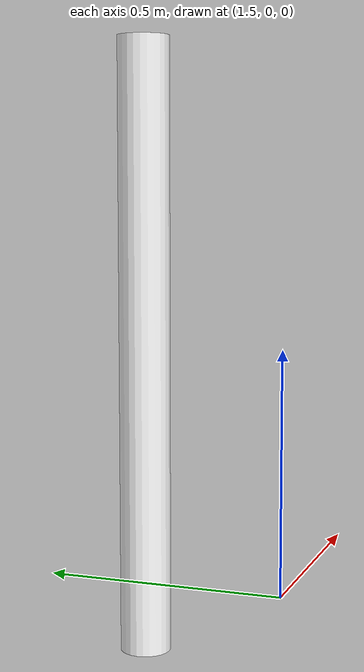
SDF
<sdf version='1.6'>
  <model name='camera_pillar'>
      <static>1</static>
      <pose frame=''>1.4 0.25 0.5 0 -0 0</pose>
      <link name='link'>
        <inertial>
          <mass>1</mass>
          <inertia>
            <ixx>0.145833</ixx>
            <ixy>0</ixy>
            <ixz>0</ixz>
            <iyy>0.145833</iyy>
            <iyz>0</iyz>
            <izz>0.125</izz>
          </inertia>
        </inertial>
        <collision name='collision'>
          <geometry>
            <cylinder>
              <radius>0.05</radius>
              <length>1.2</length>
            </cylinder>
          </geometry>
          <max_contacts>10</max_contacts>
          <surface>
            <contact>
              <ode/>
            </contact>
            <bounce/>
            <friction>
              <torsional>
                <ode/>
              </torsional>
              <ode/>
            </friction>
          </surface>
        </collision>
        <visual name='visual'>
          <geometry>
            <cylinder>
              <radius>0.05</radius>
              <length>1.2</length>
            </cylinder>
          </geometry>
          <material>
            <script>
              <uri>file://media/materials/scripts/gazebo.material</uri>
              <name>Gazebo/Metal</name>
            </script>
            <ambient>1 1 1 1</ambient>
          </material>
        </visual>
        <self_collide>0</self_collide>
        <kinematic>0</kinematic>
      </link>
    </model>
</sdf>
